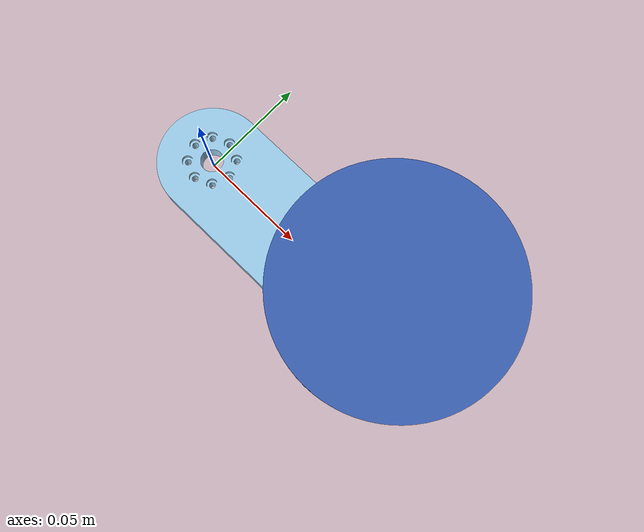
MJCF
<?xml version="1.0" ?>
<!-- Generated using onshape-to-robot -->
<!-- Onshape https://cad.onshape.com/documents/78016ee1f875560da23471c5/w/92ffb8f9ea0eb7901f3d819d/e/34dcb3d4637fbe895c2df050 -->
<mujoco model="sysid_cylinder">
  <compiler angle="radian" meshdir="assets" autolimits="true"/>
  <default>
    <default class="sysid_cylinder">
      <joint frictionloss="0.1" armature="0.005"/>
      <position kp="50" dampratio="1"/>
      <default class="visual">
        <geom type="mesh" contype="0" conaffinity="0" group="2"/>
      </default>
      <default class="collision">
        <geom group="3"/>
      </default>
    </default>
  </default>
  <worldbody>
    <!-- Link disc -->
    <body name="disc" pos="0 0 0" quat="1 0 0 0" childclass="sysid_cylinder">
      <inertial pos="0.0979626 1.28463e-05 0.0465365" mass="0.583" fullinertia="0.00063063 0.000726852 0.000581118 1.3302e-08 -5.00132e-05 -4.9016e-08"/>
      <!-- Part container -->
      <geom type="mesh" class="visual" pos="0.1 -0 -0" quat="1 -0 0 -0" mesh="container" material="container_material"/>
      <geom type="mesh" class="collision" pos="0.1 -0 -0" quat="1 -0 0 -0" mesh="container" material="container_material"/>
      <!-- Part lid -->
      <geom type="mesh" class="visual" pos="0.0997374 0.000341777 -0.012" quat="1 -0 0 -0" mesh="lid" material="lid_material"/>
      <geom type="mesh" class="collision" pos="0.0997374 0.000341777 -0.012" quat="1 -0 0 -0" mesh="lid" material="lid_material"/>
      <!-- Part sand -->
      <geom type="mesh" class="visual" pos="0.1 0 -0" quat="1 0 -0 0" mesh="sand" material="sand_material"/>
      <geom type="mesh" class="collision" pos="0.1 0 -0" quat="1 0 -0 0" mesh="sand" material="sand_material"/>
      <!-- Part disc -->
      <geom type="mesh" class="visual" pos="0.1 -0 0" quat="1 -0 0 0" mesh="disc" material="disc_material"/>
      <geom type="mesh" class="collision" pos="0.1 -0 0" quat="1 -0 0 0" mesh="disc" material="disc_material"/>
    </body>
  </worldbody>
  <asset>
    <mesh file="container.stl"/>
    <mesh file="lid.stl"/>
    <mesh file="disc.stl"/>
    <mesh file="sand.stl"/>
    <material name="container_material" rgba="0.647059 0.647059 0.647059 1"/>
    <material name="lid_material" rgba="0.231373 0.380392 0.705882 1"/>
    <material name="sand_material" rgba="1 0 0 1"/>
    <material name="disc_material" rgba="0.615686 0.811765 0.929412 1"/>
  </asset>
  <actuator/>
  <equality/>
</mujoco>
